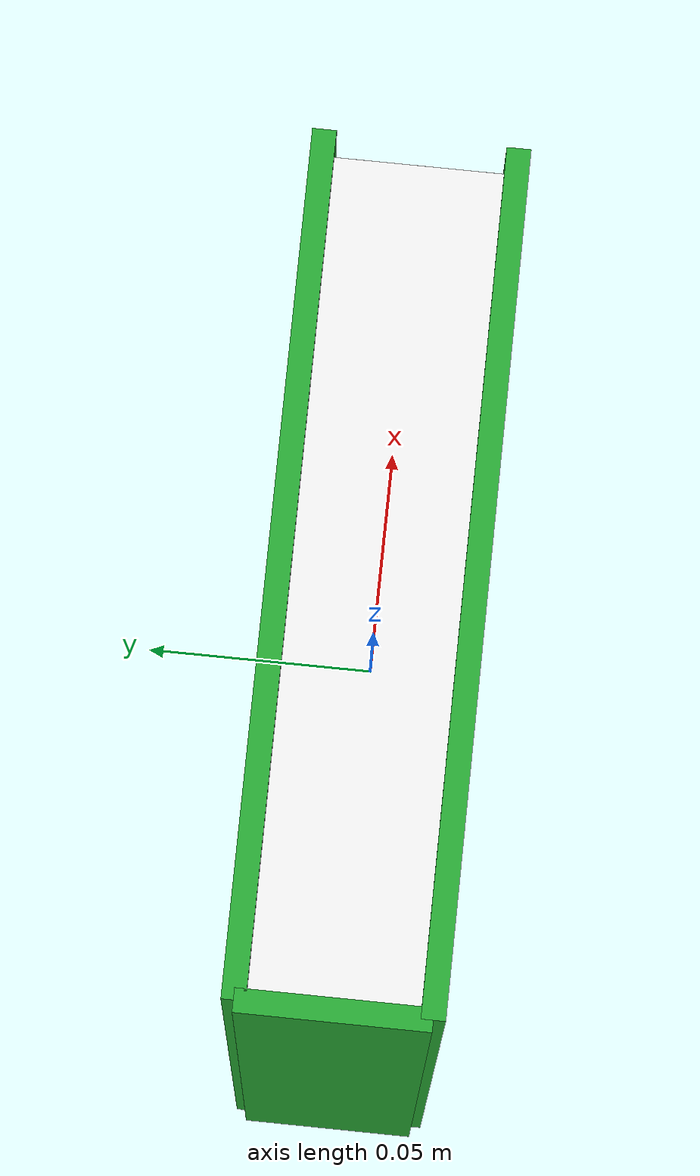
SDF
<?xml version='1.0'?>
<sdf version='1.4'>
  <model name='book_green'>
  <static>true</static>
    <link name='link'>
      <pose frame=''>0 0 0 0 -0 0</pose>
      <visual name='visual_1'>
        <geometry>
          <box>
            <size>0.175 0.04 0.00001</size>
          </box>
        </geometry>
        <material>
          <script>
            <name>Gazebo/White</name>
            <uri>file://media/materials/scripts/gazebo.material</uri>
          </script>
          <shader type='vertex'>
            <normal_map>__default__</normal_map>
          </shader>
        </material>
        <pose frame=''>-0.0025 0 0.12 0 -0 0</pose>
        <transparency>0</transparency>
      </visual>
      <visual name='visual_2'>
        <geometry>
          <box>
            <size>0.175 0.04 0.00001</size>
          </box>
        </geometry>
        <material>
          <script>
            <name>Gazebo/White</name>
            <uri>file://media/materials/scripts/gazebo.material</uri>
          </script>
          <shader type='vertex'>
            <normal_map>__default__</normal_map>
          </shader>
        </material>
        <pose frame=''>-0.0025 0 -0.12 0 -0 0</pose>
        <transparency>0</transparency>
      </visual>
      <visual name='visual_3'>
        <geometry>
          <box>
            <size>0.18 0.005 0.245</size>
          </box>
        </geometry>
        <material>
          <script>
            <name>Gazebo/Green</name>
            <uri>file://media/materials/scripts/gazebo.material</uri>
          </script>
          <shader type='vertex'>
            <normal_map>__default__</normal_map>
          </shader>
        </material>
        <pose frame=''>0 0.02 0 0 -0 0</pose>
        <transparency>0</transparency>
      </visual>
      <visual name='visual_4'>
        <geometry>
          <box>
            <size>0.18 0.005 0.245</size>
          </box>
        </geometry>
        <material>
          <script>
            <name>Gazebo/Green</name>
            <uri>file://media/materials/scripts/gazebo.material</uri>
          </script>
          <shader type='vertex'>
            <normal_map>__default__</normal_map>
          </shader>
        </material>
        <pose frame=''>0 -0.02 0 0 -0 0</pose>
        <transparency>0</transparency>
      </visual>
      <visual name='visual_5'>
        <geometry>
          <box>
            <size>0.00001 0.04 0.24</size>
          </box>
        </geometry>
        <material>
          <script>
            <name>Gazebo/White</name>
            <uri>file://media/materials/scripts/gazebo.material</uri>
          </script>
          <shader type='vertex'>
            <normal_map>__default__</normal_map>
          </shader>
        </material>
        <pose frame=''>0.085 0 0 0 -0 0</pose>
        <transparency>0</transparency>
      </visual>
      <visual name='visual_6'>
        <geometry>
          <box>
            <size>0.005 0.04 0.245</size>
          </box>
        </geometry>
        <material>
          <script>
            <name>Gazebo/Green</name>
            <uri>file://media/materials/scripts/gazebo.material</uri>
          </script>
          <shader type='vertex'>
            <normal_map>__default__</normal_map>
          </shader>
        </material>
        <pose frame=''>-0.09 0 0 0 -0 0</pose>
        <transparency>0</transparency>
      </visual>
      <collision name='collision'>
        <pose frame=''>0 0 0 0 -0 0</pose>
        <geometry>
          <box>
            <size>0.18 0.04 0.245</size>
          </box>
        </geometry>
      </collision>
    </link>
  </model>
</sdf>
